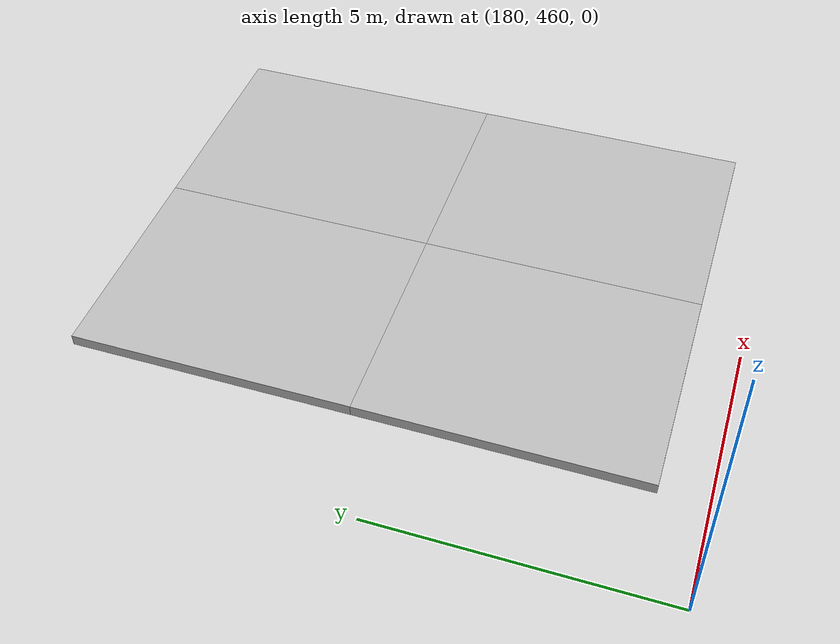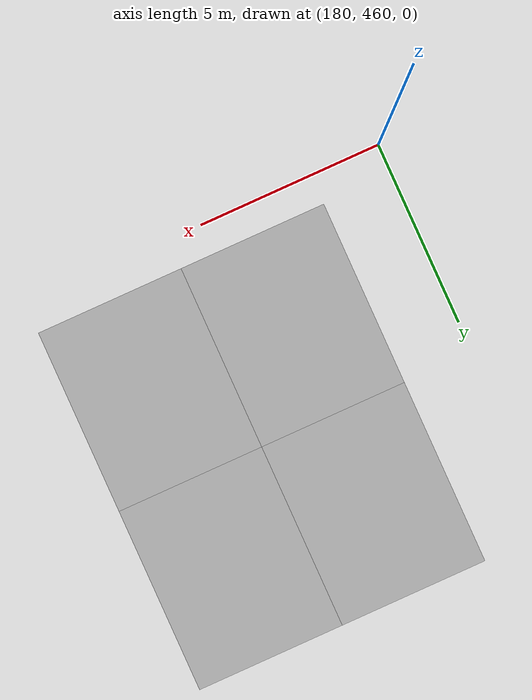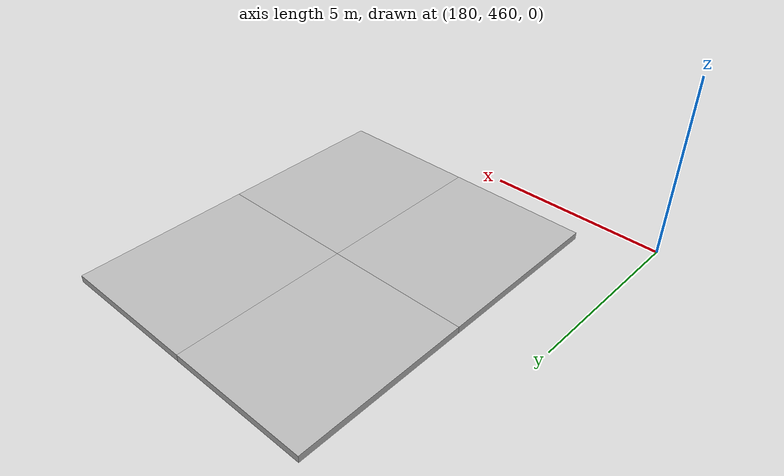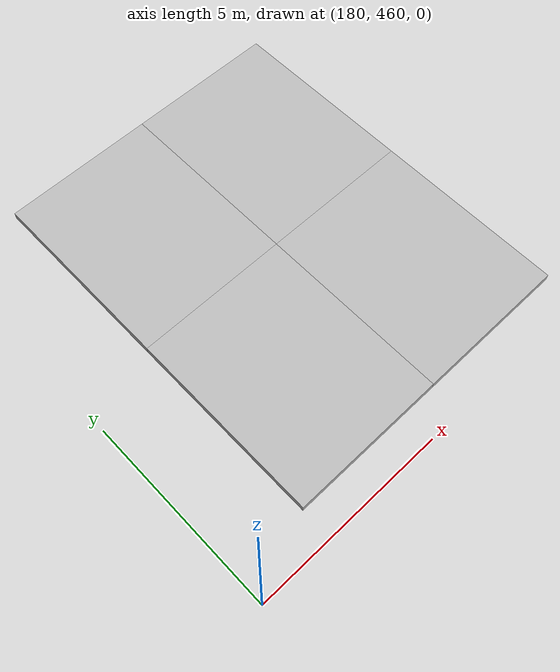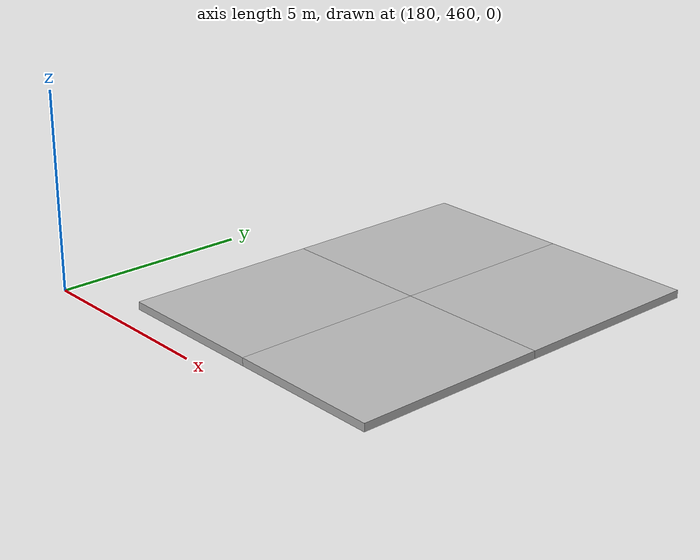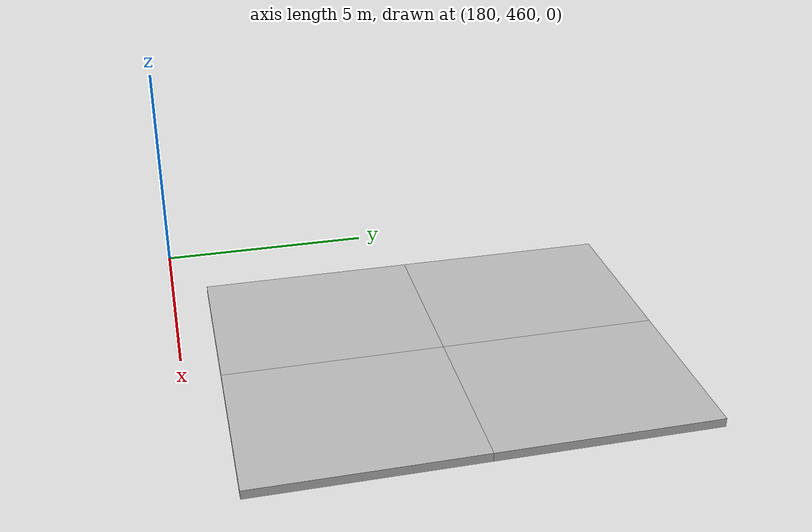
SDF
<sdf version="1.6">
 <world name="default">
  <model name="ground">
   <link name="body">
    <collision name="geom">
     <geometry><plane><normal>0 0 1</normal><size>1 1</size></plane></geometry>
     <surface><friction><ode><mu>100</mu><mu2>50</mu2></ode></friction></surface>
    </collision>
   </link>
   <static>1</static>
  </model>
  <model name="mud_box_1">
   <static>1</static>
   <link name="link">
    <collision name="collision"><geometry><box><size>8 10 0.2</size></box></geometry></collision>
    <visual name="visual_1">
     <pose>-2 2.5 0 0 -0 0</pose>
     <cast_shadows>0</cast_shadows>
     <geometry><box><size>4 5 0.2</size></box></geometry>
     <material>
      <script>
       <uri>model://mud_box/materials/scripts</uri>
       <uri>model://mud_box/materials/textures</uri>
       <name>vrc/mud</name>
      </script>
     </material>
    </visual>
    <visual name="visual_2">
     <pose>2 2.5 0 0 -0 0</pose>
     <cast_shadows>0</cast_shadows>
     <geometry><box><size>4 5 0.2</size></box></geometry>
     <material>
      <script>
       <uri>model://mud_box/materials/scripts</uri>
       <uri>model://mud_box/materials/textures</uri>
       <name>vrc/mud</name>
      </script>
     </material>
    </visual>
    <visual name="visual_3">
     <pose>2 -2.5 0 0 -0 0</pose>
     <cast_shadows>0</cast_shadows>
     <geometry><box><size>4 5 0.2</size></box></geometry>
     <material>
      <script>
       <uri>model://mud_box/materials/scripts</uri>
       <uri>model://mud_box/materials/textures</uri>
       <name>vrc/mud</name>
      </script>
     </material>
    </visual>
    <visual name="visual_4">
     <pose>-2 -2.5 0 0 -0 0</pose>
     <cast_shadows>0</cast_shadows>
     <geometry><box><size>4 5 0.2</size></box></geometry>
     <material>
      <script>
       <uri>model://mud_box/materials/scripts</uri>
       <uri>model://mud_box/materials/textures</uri>
       <name>vrc/mud</name>
      </script>
     </material>
    </visual>
   </link>
   <pose>185.924 465.82 0 0 -0 0</pose>
  </model>
 </world>
</sdf>
